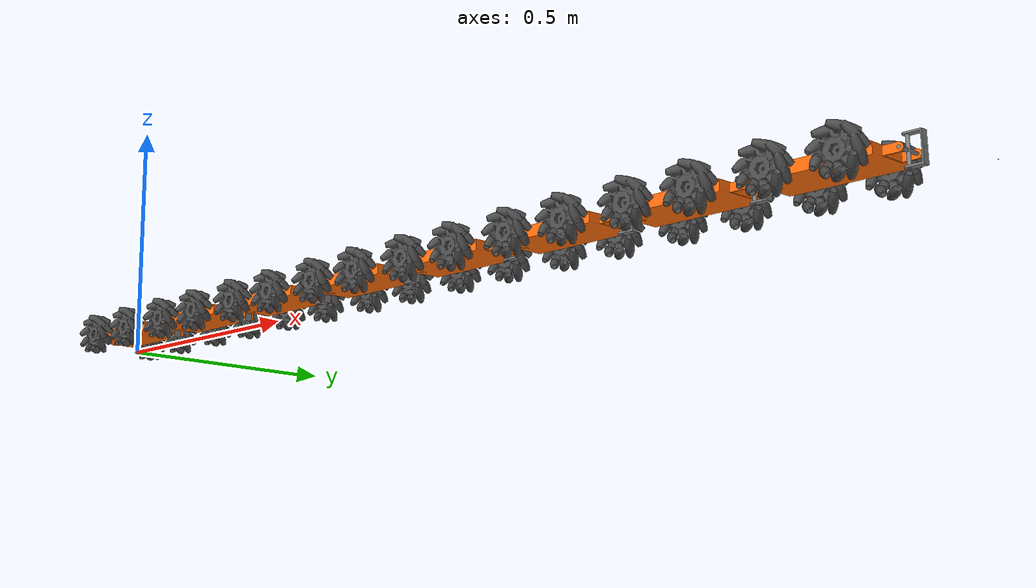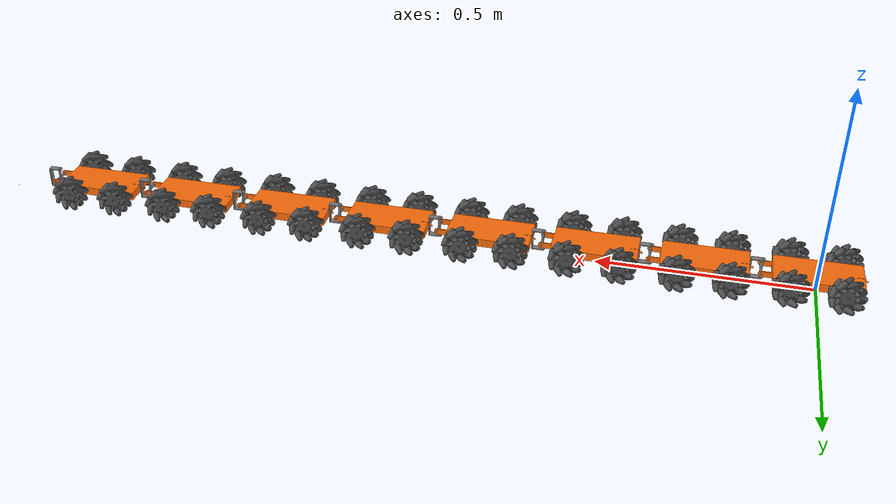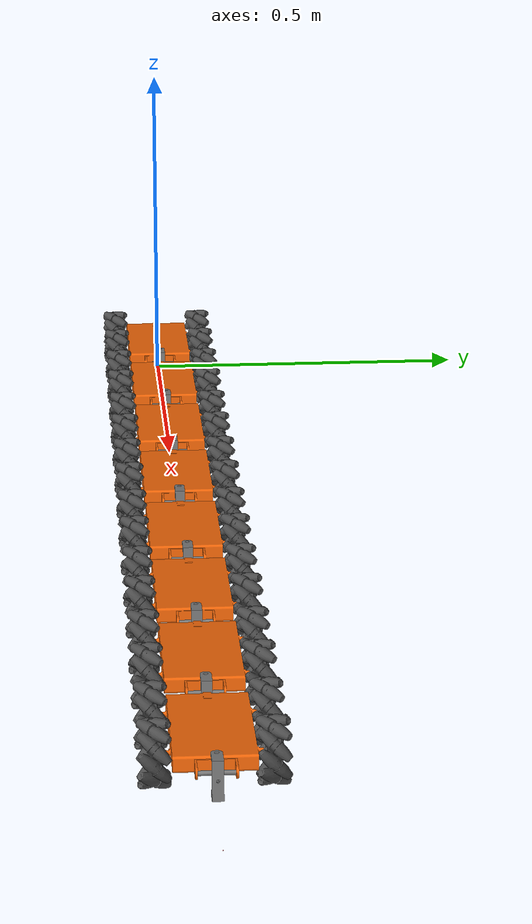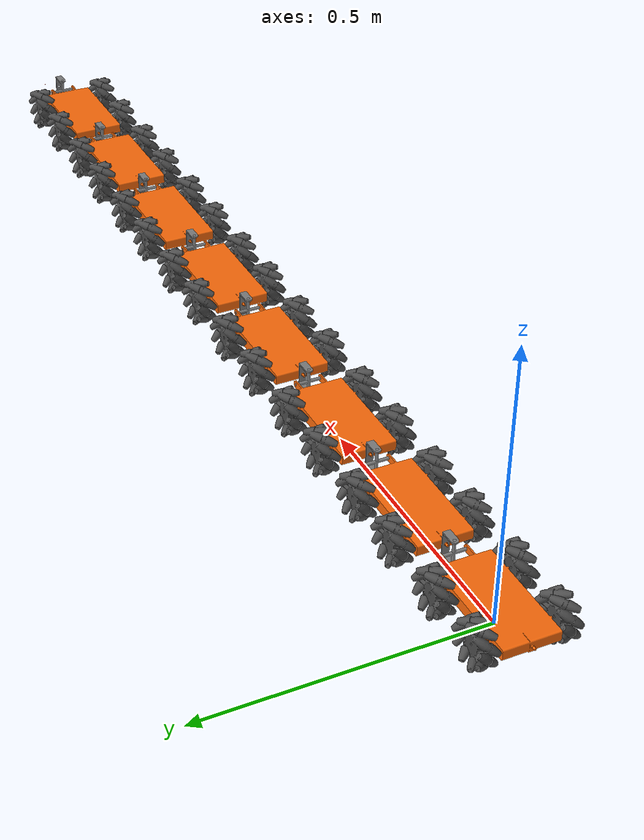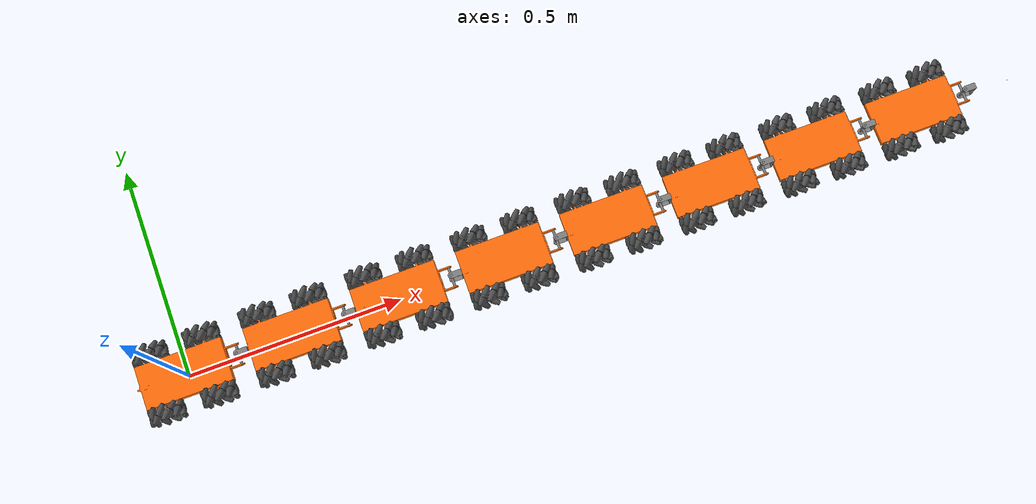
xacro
<?xml version="1.0"?>
<!-- Snake robot -->
<robot name="snakewbot" xmlns:xacro="http://www.ros.org/wiki/xacro">

	<xacro:include filename="$(find snakewbot_description)/urdf/snake_module.urdf.xacro" />
	<xacro:include filename="$(find snakewbot_description)/urdf/materials.xacro" />
	<xacro:include filename="$(find snakewbot_description)/urdf/wheel.urdf.xacro" />

  <!-- BASE-FOOTPRINT -->
  <!-- base_footprint is a fictitious link(frame) that is on the ground right below base_link origin -->
	<link name="base_footprint1">
		<inertial>
            <mass value="0.0001" />
            <origin xyz="0 0 0" />
            <inertia ixx="0.0001" ixy="0.0" ixz="0.0"
                iyy="0.0001" iyz="0.0"
                izz="0.0001" />
        </inertial>

        <visual>
            <origin xyz="0 0 0" rpy="0 0 0" />
            <geometry>
                <box size="0.001 0.001 0.001" />
            </geometry>
            <material name="red"/>
        </visual>
    </link>

    <snake_module number="1" n2="2" rotY="0" rotZ="0"/>
    <snake_module number="2" n2="3" rotY="0" rotZ="0"/>
    <snake_module number="3" n2="4" rotY="0" rotZ="0"/>
    <snake_module number="4" n2="5" rotY="0" rotZ="0"/>
    <snake_module number="5" n2="6" rotY="0" rotZ="0"/>
    <snake_module number="6" n2="7" rotY="0" rotZ="0"/>
    <snake_module number="7" n2="8" rotY="0" rotZ="0"/>
    <snake_module number="8" n2="9" rotY="0" rotZ="0"/>

  <gazebo>
    <plugin name="skid_steer_drive_controller1" filename="libgazebo_ros_skid_steer_drive.so">
      <alwaysOn>true</alwaysOn>
      <updateRate>100.0</updateRate>
      <leftFrontJoint>front_left1_wheel_joint</leftFrontJoint>
      <rightFrontJoint>front_right1_wheel_joint</rightFrontJoint>
      <leftRearJoint>back_left1_wheel_joint</leftRearJoint>
      <rightRearJoint>back_right1_wheel_joint</rightRearJoint>
      <wheelSeparation>${2*base_y_origin_to_wheel_origin}</wheelSeparation>
      <wheelDiameter>${2*wheel_radius}</wheelDiameter>
      <torque>35</torque>
      <broadcastTF>1</broadcastTF>
      <odometryFrame>map</odometryFrame>
      <commandTopic>/cmd_vel</commandTopic>
      <odometryTopic>odom</odometryTopic>
      <robotBaseFrame>base_footprint1</robotBaseFrame>
    </plugin>
  </gazebo>

</robot>

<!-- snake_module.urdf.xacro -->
<robot name="snake_module" xmlns:xacro="http://www.ros.org/wiki/xacro">

  <!-- PROPERTY LIST -->
  <!--All units in m-kg-s-radians unit system -->
  <property name="M_PI" value="3.1415926535897931" />

  <!-- Main Body-base -->
  <property name="base_x_size" value="0.2" />
  <property name="base_y_size" value="0.1" />
  <property name="base_z_size" value="0.02" />
  <property name="base_mass" value="1" /> <!-- in kg-->

  <property name="joint_distance" value="0.125" />

  <!--Inertial macros for the box and cylinder. Units are kg*m^2-->
  <macro name="box_inertia" params="m x y z">
    <inertia  ixx="${m*(y*y+z*z)/12}" ixy = "0" ixz = "0"
              iyy="${m*(x*x+z*z)/12}" iyz = "0"
              izz="${m*(x*x+z*z)/12}" />
  </macro>

  <xacro:macro name="snake_module" params="number n2 rotY rotZ">

	<joint name="base_footprint_joint${number}" type="fixed">
		<origin xyz="0 0 ${wheel_radius - base_z_origin_to_wheel_origin}" rpy="0 0 0" />
		<parent link="base_footprint${number}"/>
		<child link="base_link${number}" />
	</joint>

	<!-- BASE-LINK -->
	<!--Actual body/chassis of the robot-->
	<link name="base_link${number}">
		<inertial>
			<mass value="${base_mass}" />
			<origin xyz="0 0 0" />
			<!--The 3x3 rotational inertia matrix. -->
			<box_inertia  m="${base_mass}" x="${base_x_size}" y="${base_y_size}" z="${base_z_size}"/>
		</inertial>
		<visual>
			<origin xyz="0 0 0" rpy="0 0 0" />
			<geometry>
				<mesh filename="package://snakewbot_description/meshes/base_link.stl" />
			</geometry>
			<material name="orange" />
		</visual>
		<collision>
			<origin xyz="0 0 0" rpy="0 0 0 " />
			<geometry>
				<mesh filename="package://snakewbot_description/meshes/base_link.stl" />
			</geometry>
		</collision>
	</link>

	<gazebo reference="base_link${number}">
		<material>Gazebo/Orange</material>
		<turnGravityOff>false</turnGravityOff>
	</gazebo>

	<!-- WHEELs -->
	<snake_wheel fb="front" lr="right${number}" parent="base_link${number}" translateX="1" translateY="-1" flipY="-1"/>
	<snake_wheel fb="front" lr="left${number}" parent="base_link${number}" translateX="1" translateY="1" flipY="-1"/>
	<snake_wheel fb="back" lr="right${number}" parent="base_link${number}" translateX="-1" translateY="-1" flipY="-1"/>
	<snake_wheel fb="back" lr="left${number}" parent="base_link${number}" translateX="-1" translateY="1" flipY="-1"/>

	<joint name="joint_y${number}" type="revolute">
		<parent link="base_footprint${number}"/>
		<child link="link_y${number}"/>
		<origin xyz="${joint_distance} 0 ${wheel_radius}" rpy="0 ${rotY} 0" />
		<axis xyz="0 1 0" rpy="0 0 0" />
		<limit lower="-${M_PI/4}" upper="${M_PI/4}" effort="100" velocity="100"/>
		<joint_properties damping="0.0" friction="0.0"/>
	</joint>

	<link name="link_y${number}">
		<collision>
			<origin xyz="0 0 0" rpy="0 0 0"/>
			<geometry>
				<mesh filename="package://snakewbot_description/meshes/crossaxis.stl" />
			</geometry>
		</collision>

		<visual>
			<origin xyz="0 0 0" rpy="0 0 0"/>
			<geometry>
				<mesh filename="package://snakewbot_description/meshes/crossaxis.stl" />
			</geometry>
			<material name="grey2"/>
		</visual>

		<inertial>
			<origin xyz="0 0 0" rpy="0 0 0"/>
			<mass value="0.001"/>
			<inertia
				ixx="0.001" ixy="0.0" ixz="0.0"
				iyy="0.001" iyz="0.0"
				izz="0.001"/>
		</inertial>
	</link>
	<gazebo reference="link_y${number}">
		<material>Gazebo/Grey</material>
	</gazebo>

	<joint name="joint_z${number}" type="revolute">
		<parent link="link_y${number}"/>
		<child link="link_z${number}"/>
		<origin xyz="0 0 0" rpy="0 0 ${rotZ}" />
		<axis xyz="0 0 1" rpy="0 0 0" />
		<limit lower="-${M_PI/6}" upper="${M_PI/6}" effort="100" velocity="100"/>
		<joint_properties damping="0.0" friction="0.0"/>
	</joint>

	<link name="link_z${number}">
		<collision>
			<origin xyz="0 0 0" rpy="0 0 0"/>
			<geometry>
				<mesh filename="package://snakewbot_description/meshes/joint1_fix.stl" />
			</geometry>
		</collision>

		<visual>
			<origin xyz="0 0 0" rpy="0 0 0"/>
			<geometry>
				<mesh filename="package://snakewbot_description/meshes/joint1_fix.stl" />
			</geometry>
			<material name="grey2"/>
		</visual>

		<inertial>
			<origin xyz="0 0 0" rpy="0 0 0"/>
			<mass value="0.001"/>
			<inertia
				ixx="0.001" ixy="0.0" ixz="0.0"
				iyy="0.001" iyz="0.0"
				izz="0.001"/>
		</inertial>
	</link>
	<gazebo reference="link_z${number}">
		<material>Gazebo/Grey</material>
	</gazebo>

	<joint name="joint_base${number}" type="fixed">
		<origin xyz="${joint_distance} 0 -${wheel_radius}" rpy="0 0 0" />
		<parent link="link_z${number}"/>
		<child link="base_footprint${n2}" />
	</joint>

	<link name="base_footprint${n2}">
		<inertial>
			<mass value="0.0001" />
			<origin xyz="0 0 0" />
			<inertia
				ixx="0.0001" ixy="0.0" ixz="0.0"
				iyy="0.0001" iyz="0.0"
				izz="0.0001" />
		</inertial>
			<visual>
			<origin xyz="0 0 0" rpy="0 0 0" />
			<geometry>
				<box size="0.001 0.001 0.001" />
			</geometry>
			<material name="red"/>
		</visual>
	</link>

  </xacro:macro>
</robot>

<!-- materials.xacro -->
<robot>

  <material name="black">
    <color rgba="0.0 0.0 0.0 1.0"/>
  </material>

  <material name="blue">
    <color rgba="0.0 0.0 0.8 1.0"/>
  </material>

  <material name="green">
    <color rgba="0.0 0.8 0.0 1.0"/>
  </material>

  <material name="grey">
    <color rgba="0.2 0.2 0.2 1.0"/>
  </material>

  <material name="grey2">
    <color rgba="0.5 0.5 0.5 1.0"/>
  </material>

  <material name="orange">
    <color rgba="${255/255} ${108/255} ${10/255} 1.0"/>
  </material>

  <material name="brown">
    <color rgba="${222/255} ${207/255} ${195/255} 1.0"/>
  </material>

  <material name="red">
    <color rgba="0.8 0.0 0.0 1.0"/>
  </material>

  <material name="white">
    <color rgba="1.0 1.0 1.0 1.0"/>
  </material>

</robot>

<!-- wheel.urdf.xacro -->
<robot name="snake_wheel" xmlns:xacro="http://www.ros.org/wiki/xacro">

  <!-- Wheels -->
  <property name="wheel_radius" value="0.04" />
  <property name="wheel_height" value="0.04" />
  <property name="wheel_mass" value="0.2" /> <!-- in kg-->

  <property name="base_x_origin_to_wheel_origin" value="0.06" />
  <property name="base_y_origin_to_wheel_origin" value="0.07" />
  <property name="base_z_origin_to_wheel_origin" value="0.0" />

  <macro name="cylinder_inertia" params="m r h">
    <inertia  ixx="${m*(3*r*r+h*h)/12}" ixy = "0" ixz = "0"
              iyy="${m*(3*r*r+h*h)/12}" iyz = "0"
              izz="${m*r*r/2}" />
  </macro>

  <!--fb : front, back ; lr: left, right -->
  <xacro:macro name="snake_wheel" params="fb lr parent translateX translateY flipY">
	<link name="${fb}_${lr}_wheel">
      <visual>
        <origin xyz="0 0 0" rpy="${flipY*M_PI/2} 0 0" />
        <geometry>
          <mesh filename="package://snakewbot_description/meshes/omniwheel.stl" />
        </geometry>
        <material name="DarkGray" />
      </visual>
      <collision>
        <origin xyz="0 0 0" rpy="${flipY*M_PI/2} 0 0" />
        <geometry>
          <cylinder length="${wheel_height}" radius="${wheel_radius}" />
        </geometry>
      </collision>
      <inertial>
        <mass value="${wheel_mass}" />
        <origin xyz="0 0 0" />
        <cylinder_inertia  m="${wheel_mass}" r="${wheel_radius}" h="${wheel_height}" />
      </inertial>
    </link>

    <gazebo reference="${fb}_${lr}_wheel">
      <mu1 value="1.0"/>
      <mu2 value="1.0"/>
      <kp  value="10000000.0" />
      <kd  value="1.0" />
      <fdir1 value="1 0 0"/>
      <material>Gazebo/Grey</material>
      <turnGravityOff>false</turnGravityOff>
    </gazebo>

    <joint name="${fb}_${lr}_wheel_joint" type="continuous">
      <parent link="${parent}"/>
      <child link="${fb}_${lr}_wheel"/>
      <origin xyz="${translateX * base_x_origin_to_wheel_origin} ${translateY * base_y_origin_to_wheel_origin} ${base_z_origin_to_wheel_origin}" rpy="0 0 0" />
      <axis xyz="0 1 0" rpy="0 0 0" />
      <limit effort="100" velocity="100"/>
      <joint_properties damping="0.0" friction="0.0"/>
    </joint>

    <!-- Transmission is important to link the joints and the controller -->
    <transmission name="${fb}_${lr}_wheel_joint_trans">
      <type>transmission_interface/SimpleTransmission</type>
      <joint name="${fb}_${lr}_wheel_joint" />
      <actuator name="${fb}_${lr}_wheel_joint_motor">
        <hardwareInterface>EffortJointInterface</hardwareInterface>
        <mechanicalReduction>1</mechanicalReduction>
      </actuator>
    </transmission>

  </xacro:macro>
</robot>
